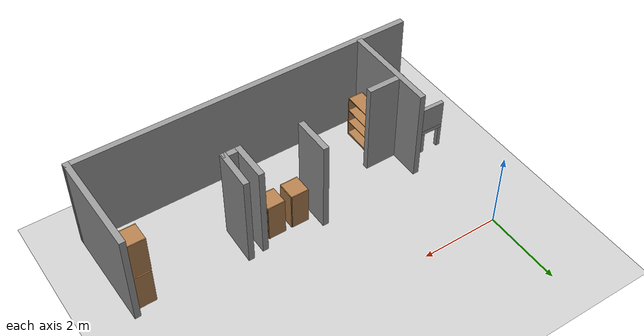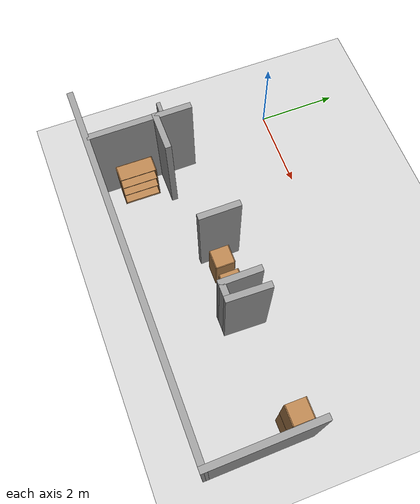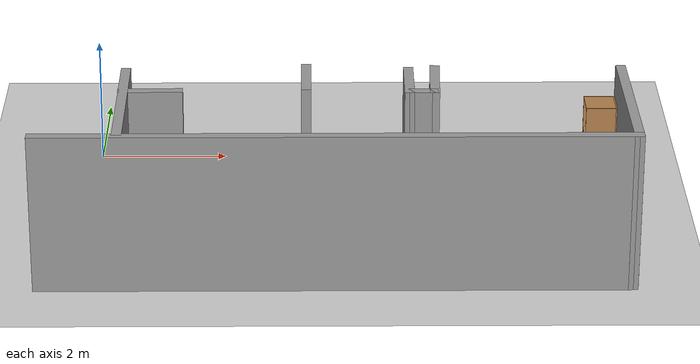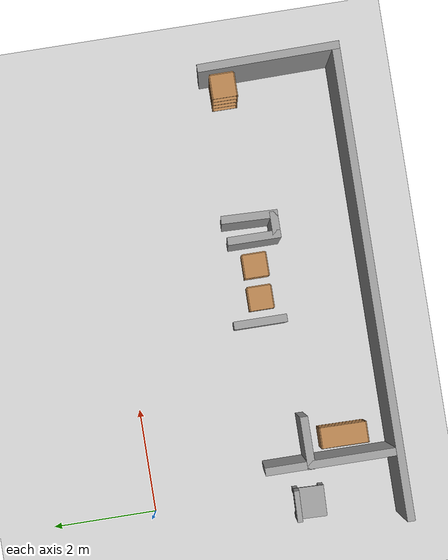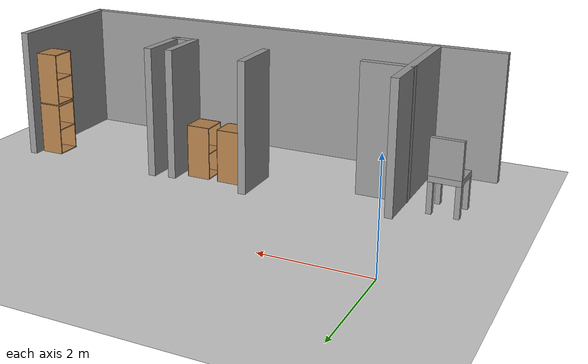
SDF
<sdf version="1.7">
 <world name="default">
  <model name="ground_plane">
   <static>1</static>
   <link name="link">
    <collision name="collision">
     <geometry><plane><normal>0 0 1</normal><size>100 100</size></plane></geometry>
     <surface>
      <contact><collide_bitmask>65535</collide_bitmask></contact>
      <friction><ode><mu>100</mu><mu2>50</mu2></ode></friction>
     </surface>
    </collision>
    <visual name="visual">
     <cast_shadows>0</cast_shadows>
     <geometry><plane><normal>0 0 1</normal><size>100 100</size></plane></geometry>
     <material>
      <script><uri>file://media/materials/scripts/gazebo.material</uri><name>Gazebo/Grey</name></script>
     </material>
    </visual>
   </link>
  </model>
  <model name="bookshelf_0_clone">
   <static>1</static>
   <link name="link">
    <inertial><mass>1</mass></inertial>
    <collision name="back">
     <pose>0 0.005 0.6 0 -0 0</pose>
     <geometry><box><size>0.9 0.01 1.2</size></box></geometry>
    </collision>
    <visual name="visual1">
     <pose>0 0.005 0.6 0 -0 0</pose>
     <geometry><box><size>0.9 0.01 1.2</size></box></geometry>
     <material>
      <script><uri>file://media/materials/scripts/gazebo.material</uri><name>Gazebo/Wood</name></script>
     </material>
    </visual>
    <collision name="left_side">
     <pose>0.45 -0.195 0.6 0 -0 0</pose>
     <geometry><box><size>0.02 0.4 1.2</size></box></geometry>
    </collision>
    <visual name="visual2">
     <pose>0.45 -0.195 0.6 0 -0 0</pose>
     <geometry><box><size>0.02 0.4 1.2</size></box></geometry>
     <material>
      <script><uri>file://media/materials/scripts/gazebo.material</uri><name>Gazebo/Wood</name></script>
     </material>
    </visual>
    <collision name="right_side">
     <pose>-0.45 -0.195 0.6 0 -0 0</pose>
     <geometry><box><size>0.02 0.4 1.2</size></box></geometry>
    </collision>
    <visual name="visual3">
     <pose>-0.45 -0.195 0.6 0 -0 0</pose>
     <geometry><box><size>0.02 0.4 1.2</size></box></geometry>
     <material>
      <script><uri>file://media/materials/scripts/gazebo.material</uri><name>Gazebo/Wood</name></script>
     </material>
    </visual>
    <collision name="bottom">
     <pose>0 -0.195 0.03 0 -0 0</pose>
     <geometry><box><size>0.88 0.4 0.06</size></box></geometry>
    </collision>
    <visual name="visual4">
     <pose>0 -0.195 0.03 0 -0 0</pose>
     <geometry><box><size>0.88 0.4 0.06</size></box></geometry>
     <material>
      <script><uri>file://media/materials/scripts/gazebo.material</uri><name>Gazebo/Wood</name></script>
     </material>
    </visual>
    <collision name="top">
     <pose>0 -0.195 1.19 0 -0 0</pose>
     <geometry><box><size>0.88 0.4 0.02</size></box></geometry>
    </collision>
    <visual name="visual5">
     <pose>0 -0.195 1.19 0 -0 0</pose>
     <geometry><box><size>0.88 0.4 0.02</size></box></geometry>
     <material>
      <script><uri>file://media/materials/scripts/gazebo.material</uri><name>Gazebo/Wood</name></script>
     </material>
    </visual>
    <collision name="low_shelf">
     <pose>0 -0.195 0.43 0 -0 0</pose>
     <geometry><box><size>0.88 0.4 0.02</size></box></geometry>
    </collision>
    <visual name="visual6">
     <pose>0 -0.195 0.43 0 -0 0</pose>
     <geometry><box><size>0.88 0.4 0.02</size></box></geometry>
     <material>
      <script><uri>file://media/materials/scripts/gazebo.material</uri><name>Gazebo/Wood</name></script>
     </material>
    </visual>
    <collision name="high_shelf">
     <pose>0 -0.195 0.8 0 -0 0</pose>
     <geometry><box><size>0.88 0.4 0.02</size></box></geometry>
    </collision>
    <visual name="visual7">
     <pose>0 -0.195 0.8 0 -0 0</pose>
     <geometry><box><size>0.88 0.4 0.02</size></box></geometry>
     <material>
      <script><uri>file://media/materials/scripts/gazebo.material</uri><name>Gazebo/Wood</name></script>
     </material>
    </visual>
   </link>
   <pose>0.760692 -3.82832 0 0 -0 1.55988</pose>
  </model>
  <model name="demo_clean">
   <link name="Wall_15">
    <pose>8.16988 -3.47452 0 0 0 -1.55787</pose>
    <visual name="Wall_15_Visual">
     <pose>0 0 1.25 0 -0 0</pose>
     <geometry><box><size>2.6816 0.15 2.5</size></box></geometry>
     <material>
      <script><uri>file://media/materials/scripts/gazebo.material</uri><name>Gazebo/Grey</name></script>
      <ambient>1 1 1 1</ambient>
      <shader type="pixel"/>
     </material>
     <meta><layer>0</layer></meta>
    </visual>
    <collision name="Wall_15_Collision">
     <pose>0 0 1.25 0 -0 0</pose>
     <geometry><box><size>2.6816 0.15 2.5</size></box></geometry>
     <surface>
      <friction>
       <ode><mu>1</mu><mu2>1</mu2><fdir1>0 0 0</fdir1><slip1>0</slip1><slip2>0</slip2></ode>
       <torsional>
        <coefficient>1</coefficient>
        <patch_radius>0</patch_radius>
        <surface_radius>0</surface_radius>
        <use_patch_radius>1</use_patch_radius>
        <ode><slip>0</slip></ode>
       </torsional>
      </friction>
      <bounce><restitution_coefficient>0</restitution_coefficient><threshold>1e+06</threshold></bounce>
      <contact>
       <collide_without_contact>0</collide_without_contact>
       <collide_without_contact_bitmask>1</collide_without_contact_bitmask>
       <collide_bitmask>1</collide_bitmask>
       <ode>
        <soft_cfm>0</soft_cfm>
        <soft_erp>0.2</soft_erp>
        <kp>1e+13</kp>
        <kd>1</kd>
        <max_vel>0.01</max_vel>
        <min_depth>0</min_depth>
       </ode>
       <bullet>
        <split_impulse>1</split_impulse>
        <split_impulse_penetration_threshold>-0.01</split_impulse_penetration_threshold>
        <soft_cfm>0</soft_cfm>
        <soft_erp>0.2</soft_erp>
        <kp>1e+13</kp>
        <kd>1</kd>
       </bullet>
      </contact>
     </surface>
    </collision>
   </link>
   <link name="Wall_16">
    <pose>3.76125 -4.74021 0 0 -0 3.14159</pose>
    <visual name="Wall_16_Visual">
     <pose>0 0 1.25 0 -0 0</pose>
     <geometry><box><size>9 0.15 2.5</size></box></geometry>
     <material>
      <script><uri>file://media/materials/scripts/gazebo.material</uri><name>Gazebo/Grey</name></script>
      <ambient>1 1 1 1</ambient>
      <shader type="pixel"/>
     </material>
     <meta><layer>0</layer></meta>
    </visual>
    <collision name="Wall_16_Collision">
     <pose>0 0 1.25 0 -0 0</pose>
     <geometry><box><size>9 0.15 2.5</size></box></geometry>
     <surface>
      <friction>
       <ode><mu>1</mu><mu2>1</mu2><fdir1>0 0 0</fdir1><slip1>0</slip1><slip2>0</slip2></ode>
       <torsional>
        <coefficient>1</coefficient>
        <patch_radius>0</patch_radius>
        <surface_radius>0</surface_radius>
        <use_patch_radius>1</use_patch_radius>
        <ode><slip>0</slip></ode>
       </torsional>
      </friction>
      <bounce><restitution_coefficient>0</restitution_coefficient><threshold>1e+06</threshold></bounce>
      <contact>
       <collide_without_contact>0</collide_without_contact>
       <collide_without_contact_bitmask>1</collide_without_contact_bitmask>
       <collide_bitmask>1</collide_bitmask>
       <ode>
        <soft_cfm>0</soft_cfm>
        <soft_erp>0.2</soft_erp>
        <kp>1e+13</kp>
        <kd>1</kd>
        <max_vel>0.01</max_vel>
        <min_depth>0</min_depth>
       </ode>
       <bullet>
        <split_impulse>1</split_impulse>
        <split_impulse_penetration_threshold>-0.01</split_impulse_penetration_threshold>
        <soft_cfm>0</soft_cfm>
        <soft_erp>0.2</soft_erp>
        <kp>1e+13</kp>
        <kd>1</kd>
       </bullet>
      </contact>
     </surface>
    </collision>
   </link>
   <link name="Wall_21">
    <pose>0.573753 -3.46553 0 0 0 -1.5708</pose>
    <visual name="Wall_21_Visual">
     <pose>0 0 1.25 0 -0 0</pose>
     <geometry><box><size>2.5 0.15 2.5</size></box></geometry>
     <material>
      <script><uri>file://media/materials/scripts/gazebo.material</uri><name>Gazebo/Grey</name></script>
      <ambient>1 1 1 1</ambient>
      <shader type="pixel"/>
     </material>
     <meta><layer>0</layer></meta>
    </visual>
    <collision name="Wall_21_Collision">
     <pose>0 0 1.25 0 -0 0</pose>
     <geometry><box><size>2.5 0.15 2.5</size></box></geometry>
     <surface>
      <friction>
       <ode><mu>1</mu><mu2>1</mu2><fdir1>0 0 0</fdir1><slip1>0</slip1><slip2>0</slip2></ode>
       <torsional>
        <coefficient>1</coefficient>
        <patch_radius>0</patch_radius>
        <surface_radius>0</surface_radius>
        <use_patch_radius>1</use_patch_radius>
        <ode><slip>0</slip></ode>
       </torsional>
      </friction>
      <bounce><restitution_coefficient>0</restitution_coefficient><threshold>1e+06</threshold></bounce>
      <contact>
       <collide_without_contact>0</collide_without_contact>
       <collide_without_contact_bitmask>1</collide_without_contact_bitmask>
       <collide_bitmask>1</collide_bitmask>
       <ode>
        <soft_cfm>0</soft_cfm>
        <soft_erp>0.2</soft_erp>
        <kp>1e+13</kp>
        <kd>1</kd>
        <max_vel>0.01</max_vel>
        <min_depth>0</min_depth>
       </ode>
       <bullet>
        <split_impulse>1</split_impulse>
        <split_impulse_penetration_threshold>-0.01</split_impulse_penetration_threshold>
        <soft_cfm>0</soft_cfm>
        <soft_erp>0.2</soft_erp>
        <kp>1e+13</kp>
        <kd>1</kd>
       </bullet>
      </contact>
     </surface>
    </collision>
   </link>
   <link name="Wall_23">
    <pose>0.983425 -3.07697 0 0 -0 0</pose>
    <inertial>
     <inertia><ixx>0</ixx><ixy>0</ixy><ixz>0</ixz><iyy>0</iyy><iyz>0</iyz><izz>0</izz></inertia>
     <mass>0</mass>
    </inertial>
    <visual name="Wall_23_Visual">
     <pose>0 0 1.25 0 -0 0</pose>
     <geometry><box><size>0.981708 0.15 2.5</size></box></geometry>
     <material>
      <script><uri>file://media/materials/scripts/gazebo.material</uri><name>Gazebo/Grey</name></script>
      <ambient>1 1 1 1</ambient>
      <shader type="pixel"/>
     </material>
     <meta><layer>0</layer></meta>
    </visual>
    <collision name="Wall_23_Collision">
     <pose>0 0 1.25 0 -0 0</pose>
     <geometry><box><size>0.981708 0.15 2.5</size></box></geometry>
     <surface>
      <friction>
       <ode><mu>1</mu><mu2>1</mu2><fdir1>0 0 0</fdir1><slip1>0</slip1><slip2>0</slip2></ode>
       <torsional>
        <coefficient>1</coefficient>
        <patch_radius>0</patch_radius>
        <surface_radius>0</surface_radius>
        <use_patch_radius>1</use_patch_radius>
        <ode><slip>0</slip></ode>
       </torsional>
      </friction>
      <bounce><restitution_coefficient>0</restitution_coefficient><threshold>1e+06</threshold></bounce>
      <contact>
       <collide_without_contact>0</collide_without_contact>
       <collide_without_contact_bitmask>1</collide_without_contact_bitmask>
       <collide_bitmask>1</collide_bitmask>
       <ode>
        <soft_cfm>0</soft_cfm>
        <soft_erp>0.2</soft_erp>
        <kp>1e+13</kp>
        <kd>1</kd>
        <max_vel>0.01</max_vel>
        <min_depth>0</min_depth>
       </ode>
       <bullet>
        <split_impulse>1</split_impulse>
        <split_impulse_penetration_threshold>-0.01</split_impulse_penetration_threshold>
        <soft_cfm>0</soft_cfm>
        <soft_erp>0.2</soft_erp>
        <kp>1e+13</kp>
        <kd>1</kd>
       </bullet>
      </contact>
     </surface>
    </collision>
   </link>
   <link name="Wall_40">
    <pose>4.89119 -2.69073 0 0 0 -1.57324</pose>
    <visual name="Wall_40_Visual">
     <pose>0 0 1.25 0 -0 0</pose>
     <geometry><box><size>1 0.15 2.5</size></box></geometry>
     <material>
      <script><uri>file://media/materials/scripts/gazebo.material</uri><name>Gazebo/Grey</name></script>
      <ambient>1 1 1 1</ambient>
      <shader type="pixel"/>
     </material>
     <meta><layer>0</layer></meta>
    </visual>
    <collision name="Wall_40_Collision">
     <pose>0 0 1.25 0 -0 0</pose>
     <geometry><box><size>1 0.15 2.5</size></box></geometry>
     <surface>
      <friction>
       <ode><mu>1</mu><mu2>1</mu2><fdir1>0 0 0</fdir1><slip1>0</slip1><slip2>0</slip2></ode>
       <torsional>
        <coefficient>1</coefficient>
        <patch_radius>0</patch_radius>
        <surface_radius>0</surface_radius>
        <use_patch_radius>1</use_patch_radius>
        <ode><slip>0</slip></ode>
       </torsional>
      </friction>
      <bounce><restitution_coefficient>0</restitution_coefficient><threshold>1e+06</threshold></bounce>
      <contact>
       <collide_without_contact>0</collide_without_contact>
       <collide_without_contact_bitmask>1</collide_without_contact_bitmask>
       <collide_bitmask>1</collide_bitmask>
       <ode>
        <soft_cfm>0</soft_cfm>
        <soft_erp>0.2</soft_erp>
        <kp>1e+13</kp>
        <kd>1</kd>
        <max_vel>0.01</max_vel>
        <min_depth>0</min_depth>
       </ode>
       <bullet>
        <split_impulse>1</split_impulse>
        <split_impulse_penetration_threshold>-0.01</split_impulse_penetration_threshold>
        <soft_cfm>0</soft_cfm>
        <soft_erp>0.2</soft_erp>
        <kp>1e+13</kp>
        <kd>1</kd>
       </bullet>
      </contact>
     </surface>
    </collision>
   </link>
   <link name="Wall_41">
    <pose>5.06619 -3.11573 0 0 -0 0</pose>
    <visual name="Wall_41_Visual">
     <pose>0 0 1.25 0 -0 0</pose>
     <geometry><box><size>0.5 0.15 2.5</size></box></geometry>
     <material>
      <script><uri>file://media/materials/scripts/gazebo.material</uri><name>Gazebo/Grey</name></script>
      <ambient>1 1 1 1</ambient>
      <shader type="pixel"/>
     </material>
     <meta><layer>0</layer></meta>
    </visual>
    <collision name="Wall_41_Collision">
     <pose>0 0 1.25 0 -0 0</pose>
     <geometry><box><size>0.5 0.15 2.5</size></box></geometry>
     <surface>
      <friction>
       <ode><mu>1</mu><mu2>1</mu2><fdir1>0 0 0</fdir1><slip1>0</slip1><slip2>0</slip2></ode>
       <torsional>
        <coefficient>1</coefficient>
        <patch_radius>0</patch_radius>
        <surface_radius>0</surface_radius>
        <use_patch_radius>1</use_patch_radius>
        <ode><slip>0</slip></ode>
       </torsional>
      </friction>
      <bounce><restitution_coefficient>0</restitution_coefficient><threshold>1e+06</threshold></bounce>
      <contact>
       <collide_without_contact>0</collide_without_contact>
       <collide_without_contact_bitmask>1</collide_without_contact_bitmask>
       <collide_bitmask>1</collide_bitmask>
       <ode>
        <soft_cfm>0</soft_cfm>
        <soft_erp>0.2</soft_erp>
        <kp>1e+13</kp>
        <kd>1</kd>
        <max_vel>0.01</max_vel>
        <min_depth>0</min_depth>
       </ode>
       <bullet>
        <split_impulse>1</split_impulse>
        <split_impulse_penetration_threshold>-0.01</split_impulse_penetration_threshold>
        <soft_cfm>0</soft_cfm>
        <soft_erp>0.2</soft_erp>
        <kp>1e+13</kp>
        <kd>1</kd>
       </bullet>
      </contact>
     </surface>
    </collision>
   </link>
   <link name="Wall_42">
    <pose>5.28364 -2.66264 0 0 -0 1.53905</pose>
    <visual name="Wall_42_Visual">
     <pose>0 0 1.25 0 -0 0</pose>
     <geometry><box><size>1.05905 0.15 2.5</size></box></geometry>
     <material>
      <script><uri>file://media/materials/scripts/gazebo.material</uri><name>Gazebo/Grey</name></script>
      <ambient>1 1 1 1</ambient>
      <shader type="pixel"/>
     </material>
     <meta><layer>0</layer></meta>
    </visual>
    <collision name="Wall_42_Collision">
     <pose>0 0 1.25 0 -0 0</pose>
     <geometry><box><size>1.05905 0.15 2.5</size></box></geometry>
     <surface>
      <friction>
       <ode><mu>1</mu><mu2>1</mu2><fdir1>0 0 0</fdir1><slip1>0</slip1><slip2>0</slip2></ode>
       <torsional>
        <coefficient>1</coefficient>
        <patch_radius>0</patch_radius>
        <surface_radius>0</surface_radius>
        <use_patch_radius>1</use_patch_radius>
        <ode><slip>0</slip></ode>
       </torsional>
      </friction>
      <bounce><restitution_coefficient>0</restitution_coefficient><threshold>1e+06</threshold></bounce>
      <contact>
       <collide_without_contact>0</collide_without_contact>
       <collide_without_contact_bitmask>1</collide_without_contact_bitmask>
       <collide_bitmask>1</collide_bitmask>
       <ode>
        <soft_cfm>0</soft_cfm>
        <soft_erp>0.2</soft_erp>
        <kp>1e+13</kp>
        <kd>1</kd>
        <max_vel>0.01</max_vel>
        <min_depth>0</min_depth>
       </ode>
       <bullet>
        <split_impulse>1</split_impulse>
        <split_impulse_penetration_threshold>-0.01</split_impulse_penetration_threshold>
        <soft_cfm>0</soft_cfm>
        <soft_erp>0.2</soft_erp>
        <kp>1e+13</kp>
        <kd>1</kd>
       </bullet>
      </contact>
     </surface>
    </collision>
   </link>
   <link name="Wall_49">
    <pose>3.33073 -2.56443 0 0 0 -1.5708</pose>
    <visual name="Wall_49_Visual">
     <pose>0 0 1.25 0 -0 0</pose>
     <geometry><box><size>1 0.15 2.5</size></box></geometry>
     <material>
      <script><uri>file://media/materials/scripts/gazebo.material</uri><name>Gazebo/Grey</name></script>
      <ambient>1 1 1 1</ambient>
      <shader type="pixel"/>
     </material>
     <meta><layer>0</layer></meta>
    </visual>
    <collision name="Wall_49_Collision">
     <pose>0 0 1.25 0 -0 0</pose>
     <geometry><box><size>1 0.15 2.5</size></box></geometry>
     <surface>
      <friction>
       <ode><mu>1</mu><mu2>1</mu2><fdir1>0 0 0</fdir1><slip1>0</slip1><slip2>0</slip2></ode>
       <torsional>
        <coefficient>1</coefficient>
        <patch_radius>0</patch_radius>
        <surface_radius>0</surface_radius>
        <use_patch_radius>1</use_patch_radius>
        <ode><slip>0</slip></ode>
       </torsional>
      </friction>
      <bounce><restitution_coefficient>0</restitution_coefficient><threshold>1e+06</threshold></bounce>
      <contact>
       <collide_without_contact>0</collide_without_contact>
       <collide_without_contact_bitmask>1</collide_without_contact_bitmask>
       <collide_bitmask>1</collide_bitmask>
       <ode>
        <soft_cfm>0</soft_cfm>
        <soft_erp>0.2</soft_erp>
        <kp>1e+13</kp>
        <kd>1</kd>
        <max_vel>0.01</max_vel>
        <min_depth>0</min_depth>
       </ode>
       <bullet>
        <split_impulse>1</split_impulse>
        <split_impulse_penetration_threshold>-0.01</split_impulse_penetration_threshold>
        <soft_cfm>0</soft_cfm>
        <soft_erp>0.2</soft_erp>
        <kp>1e+13</kp>
        <kd>1</kd>
       </bullet>
      </contact>
     </surface>
    </collision>
   </link>
   <static>1</static>
  </model>
  <model name="cabinet_clone">
   <static>1</static>
   <link name="cabinet_bottom_plate">
    <inertial>
     <pose>0 0 -1 0 -0 0</pose>
     <inertia><ixx>2.05</ixx><ixy>0</ixy><ixz>0</ixz><iyy>2.05</iyy><iyz>0</iyz><izz>2.05</izz></inertia>
     <mass>25</mass>
    </inertial>
    <collision name="cabinet_bottom_plate_geom">
     <pose>0 0 0.01 0 -0 0</pose>
     <geometry><box><size>0.45 0.45 0.02</size></box></geometry>
    </collision>
    <visual name="cabinet_bottom_plate_geom_visual">
     <pose>0 0 0.01 0 -0 0</pose>
     <geometry><box><size>0.45 0.45 0.02</size></box></geometry>
     <material>
      <script><uri>file://media/materials/scripts/gazebo.material</uri><name>Gazebo/Wood</name></script>
     </material>
    </visual>
    <collision name="cabinet_bottom_plate_geom_cabinet_back_plate">
     <pose>0.235 0 0.51 0 -0 0</pose>
     <geometry><box><size>0.02 0.45 1.02</size></box></geometry>
    </collision>
    <visual name="cabinet_bottom_plate_geom_cabinet_back_plate_visual">
     <pose>0.235 0 0.51 0 -0 0</pose>
     <geometry><box><size>0.02 0.45 1.02</size></box></geometry>
     <material>
      <script><uri>file://media/materials/scripts/gazebo.material</uri><name>Gazebo/Wood</name></script>
     </material>
    </visual>
    <collision name="cabinet_bottom_plate_geom_cabinet_left_plate">
     <pose>0 0.235 0.51 0 -0 0</pose>
     <geometry><box><size>0.45 0.02 1.02</size></box></geometry>
    </collision>
    <visual name="cabinet_bottom_plate_geom_cabinet_left_plate_visual">
     <pose>0 0.235 0.51 0 -0 0</pose>
     <geometry><box><size>0.45 0.02 1.02</size></box></geometry>
     <material>
      <script><uri>file://media/materials/scripts/gazebo.material</uri><name>Gazebo/Wood</name></script>
     </material>
    </visual>
    <collision name="cabinet_bottom_plate_geom_cabinet_middle_plate">
     <pose>0 0 0.51 0 -0 0</pose>
     <geometry><box><size>0.45 0.45 0.02</size></box></geometry>
    </collision>
    <visual name="cabinet_bottom_plate_geom_cabinet_middle_plate_visual">
     <pose>0 0 0.51 0 -0 0</pose>
     <geometry><box><size>0.45 0.45 0.02</size></box></geometry>
     <material>
      <script><uri>file://media/materials/scripts/gazebo.material</uri><name>Gazebo/Wood</name></script>
     </material>
    </visual>
    <collision name="cabinet_bottom_plate_geom_cabinet_right_plate">
     <pose>0 -0.235 0.51 0 -0 0</pose>
     <geometry><box><size>0.45 0.02 1.02</size></box></geometry>
    </collision>
    <visual name="cabinet_bottom_plate_geom_cabinet_right_plate_visual">
     <pose>0 -0.235 0.51 0 -0 0</pose>
     <geometry><box><size>0.45 0.02 1.02</size></box></geometry>
     <material>
      <script><uri>file://media/materials/scripts/gazebo.material</uri><name>Gazebo/Wood</name></script>
     </material>
    </visual>
    <collision name="cabinet_bottom_plate_geom_cabinet_top_plate">
     <pose>0 0 1.01 0 -0 0</pose>
     <geometry><box><size>0.45 0.45 0.02</size></box></geometry>
    </collision>
    <visual name="cabinet_bottom_plate_geom_cabinet_top_plate_visual">
     <pose>0 0 1.01 0 -0 0</pose>
     <geometry><box><size>0.45 0.45 0.02</size></box></geometry>
     <material>
      <script><uri>file://media/materials/scripts/gazebo.material</uri><name>Gazebo/Wood</name></script>
     </material>
    </visual>
   </link>
   <pose>3.79546 -2.66542 0 0 -0 0</pose>
  </model>
  <model name="cabinet_clone_0">
   <static>1</static>
   <link name="cabinet_bottom_plate">
    <inertial>
     <pose>0 0 -1 0 -0 0</pose>
     <inertia><ixx>2.05</ixx><ixy>0</ixy><ixz>0</ixz><iyy>2.05</iyy><iyz>0</iyz><izz>2.05</izz></inertia>
     <mass>25</mass>
    </inertial>
    <collision name="cabinet_bottom_plate_geom">
     <pose>0 0 0.01 0 -0 0</pose>
     <geometry><box><size>0.45 0.45 0.02</size></box></geometry>
    </collision>
    <visual name="cabinet_bottom_plate_geom_visual">
     <pose>0 0 0.01 0 -0 0</pose>
     <geometry><box><size>0.45 0.45 0.02</size></box></geometry>
     <material>
      <script><uri>file://media/materials/scripts/gazebo.material</uri><name>Gazebo/Wood</name></script>
     </material>
    </visual>
    <collision name="cabinet_bottom_plate_geom_cabinet_back_plate">
     <pose>0.235 0 0.51 0 -0 0</pose>
     <geometry><box><size>0.02 0.45 1.02</size></box></geometry>
    </collision>
    <visual name="cabinet_bottom_plate_geom_cabinet_back_plate_visual">
     <pose>0.235 0 0.51 0 -0 0</pose>
     <geometry><box><size>0.02 0.45 1.02</size></box></geometry>
     <material>
      <script><uri>file://media/materials/scripts/gazebo.material</uri><name>Gazebo/Wood</name></script>
     </material>
    </visual>
    <collision name="cabinet_bottom_plate_geom_cabinet_left_plate">
     <pose>0 0.235 0.51 0 -0 0</pose>
     <geometry><box><size>0.45 0.02 1.02</size></box></geometry>
    </collision>
    <visual name="cabinet_bottom_plate_geom_cabinet_left_plate_visual">
     <pose>0 0.235 0.51 0 -0 0</pose>
     <geometry><box><size>0.45 0.02 1.02</size></box></geometry>
     <material>
      <script><uri>file://media/materials/scripts/gazebo.material</uri><name>Gazebo/Wood</name></script>
     </material>
    </visual>
    <collision name="cabinet_bottom_plate_geom_cabinet_middle_plate">
     <pose>0 0 0.51 0 -0 0</pose>
     <geometry><box><size>0.45 0.45 0.02</size></box></geometry>
    </collision>
    <visual name="cabinet_bottom_plate_geom_cabinet_middle_plate_visual">
     <pose>0 0 0.51 0 -0 0</pose>
     <geometry><box><size>0.45 0.45 0.02</size></box></geometry>
     <material>
      <script><uri>file://media/materials/scripts/gazebo.material</uri><name>Gazebo/Wood</name></script>
     </material>
    </visual>
    <collision name="cabinet_bottom_plate_geom_cabinet_right_plate">
     <pose>0 -0.235 0.51 0 -0 0</pose>
     <geometry><box><size>0.45 0.02 1.02</size></box></geometry>
    </collision>
    <visual name="cabinet_bottom_plate_geom_cabinet_right_plate_visual">
     <pose>0 -0.235 0.51 0 -0 0</pose>
     <geometry><box><size>0.45 0.02 1.02</size></box></geometry>
     <material>
      <script><uri>file://media/materials/scripts/gazebo.material</uri><name>Gazebo/Wood</name></script>
     </material>
    </visual>
    <collision name="cabinet_bottom_plate_geom_cabinet_top_plate">
     <pose>0 0 1.01 0 -0 0</pose>
     <geometry><box><size>0.45 0.45 0.02</size></box></geometry>
    </collision>
    <visual name="cabinet_bottom_plate_geom_cabinet_top_plate_visual">
     <pose>0 0 1.01 0 -0 0</pose>
     <geometry><box><size>0.45 0.45 0.02</size></box></geometry>
     <material>
      <script><uri>file://media/materials/scripts/gazebo.material</uri><name>Gazebo/Wood</name></script>
     </material>
    </visual>
   </link>
   <pose>4.4286 -2.66549 0 0 -0 0</pose>
  </model>
  <model name="cabinet_clone_2">
   <static>1</static>
   <link name="cabinet_bottom_plate">
    <inertial>
     <pose>0 0 -1 0 -0 0</pose>
     <inertia><ixx>2.05</ixx><ixy>0</ixy><ixz>0</ixz><iyy>2.05</iyy><iyz>0</iyz><izz>2.05</izz></inertia>
     <mass>25</mass>
    </inertial>
    <collision name="cabinet_bottom_plate_geom">
     <pose>0 0 0.01 0 -0 0</pose>
     <geometry><box><size>0.45 0.45 0.02</size></box></geometry>
    </collision>
    <visual name="cabinet_bottom_plate_geom_visual">
     <pose>0 0 0.01 0 -0 0</pose>
     <geometry><box><size>0.45 0.45 0.02</size></box></geometry>
     <material>
      <script><uri>file://media/materials/scripts/gazebo.material</uri><name>Gazebo/Wood</name></script>
     </material>
    </visual>
    <collision name="cabinet_bottom_plate_geom_cabinet_back_plate">
     <pose>0.235 0 0.51 0 -0 0</pose>
     <geometry><box><size>0.02 0.45 1.02</size></box></geometry>
    </collision>
    <visual name="cabinet_bottom_plate_geom_cabinet_back_plate_visual">
     <pose>0.235 0 0.51 0 -0 0</pose>
     <geometry><box><size>0.02 0.45 1.02</size></box></geometry>
     <material>
      <script><uri>file://media/materials/scripts/gazebo.material</uri><name>Gazebo/Wood</name></script>
     </material>
    </visual>
    <collision name="cabinet_bottom_plate_geom_cabinet_left_plate">
     <pose>0 0.235 0.51 0 -0 0</pose>
     <geometry><box><size>0.45 0.02 1.02</size></box></geometry>
    </collision>
    <visual name="cabinet_bottom_plate_geom_cabinet_left_plate_visual">
     <pose>0 0.235 0.51 0 -0 0</pose>
     <geometry><box><size>0.45 0.02 1.02</size></box></geometry>
     <material>
      <script><uri>file://media/materials/scripts/gazebo.material</uri><name>Gazebo/Wood</name></script>
     </material>
    </visual>
    <collision name="cabinet_bottom_plate_geom_cabinet_middle_plate">
     <pose>0 0 0.51 0 -0 0</pose>
     <geometry><box><size>0.45 0.45 0.02</size></box></geometry>
    </collision>
    <visual name="cabinet_bottom_plate_geom_cabinet_middle_plate_visual">
     <pose>0 0 0.51 0 -0 0</pose>
     <geometry><box><size>0.45 0.45 0.02</size></box></geometry>
     <material>
      <script><uri>file://media/materials/scripts/gazebo.material</uri><name>Gazebo/Wood</name></script>
     </material>
    </visual>
    <collision name="cabinet_bottom_plate_geom_cabinet_right_plate">
     <pose>0 -0.235 0.51 0 -0 0</pose>
     <geometry><box><size>0.45 0.02 1.02</size></box></geometry>
    </collision>
    <visual name="cabinet_bottom_plate_geom_cabinet_right_plate_visual">
     <pose>0 -0.235 0.51 0 -0 0</pose>
     <geometry><box><size>0.45 0.02 1.02</size></box></geometry>
     <material>
      <script><uri>file://media/materials/scripts/gazebo.material</uri><name>Gazebo/Wood</name></script>
     </material>
    </visual>
    <collision name="cabinet_bottom_plate_geom_cabinet_top_plate">
     <pose>0 0 1.01 0 -0 0</pose>
     <geometry><box><size>0.45 0.45 0.02</size></box></geometry>
    </collision>
    <visual name="cabinet_bottom_plate_geom_cabinet_top_plate_visual">
     <pose>0 0 1.01 0 -0 0</pose>
     <geometry><box><size>0.45 0.45 0.02</size></box></geometry>
     <material>
      <script><uri>file://media/materials/scripts/gazebo.material</uri><name>Gazebo/Wood</name></script>
     </material>
    </visual>
   </link>
   <pose>7.81869 -2.57284 0 0 -0 0</pose>
  </model>
  <model name="cabinet_clone_2_clone">
   <static>1</static>
   <link name="cabinet_bottom_plate">
    <inertial>
     <pose>0 0 -1 0 -0 0</pose>
     <inertia><ixx>2.05</ixx><ixy>0</ixy><ixz>0</ixz><iyy>2.05</iyy><iyz>0</iyz><izz>2.05</izz></inertia>
     <mass>25</mass>
    </inertial>
    <collision name="cabinet_bottom_plate_geom">
     <pose>0 0 0.01 0 -0 0</pose>
     <geometry><box><size>0.45 0.45 0.02</size></box></geometry>
    </collision>
    <visual name="cabinet_bottom_plate_geom_visual">
     <pose>0 0 0.01 0 -0 0</pose>
     <geometry><box><size>0.45 0.45 0.02</size></box></geometry>
     <material>
      <script><uri>file://media/materials/scripts/gazebo.material</uri><name>Gazebo/Wood</name></script>
     </material>
    </visual>
    <collision name="cabinet_bottom_plate_geom_cabinet_back_plate">
     <pose>0.235 0 0.51 0 -0 0</pose>
     <geometry><box><size>0.02 0.45 1.02</size></box></geometry>
    </collision>
    <visual name="cabinet_bottom_plate_geom_cabinet_back_plate_visual">
     <pose>0.235 0 0.51 0 -0 0</pose>
     <geometry><box><size>0.02 0.45 1.02</size></box></geometry>
     <material>
      <script><uri>file://media/materials/scripts/gazebo.material</uri><name>Gazebo/Wood</name></script>
     </material>
    </visual>
    <collision name="cabinet_bottom_plate_geom_cabinet_left_plate">
     <pose>0 0.235 0.51 0 -0 0</pose>
     <geometry><box><size>0.45 0.02 1.02</size></box></geometry>
    </collision>
    <visual name="cabinet_bottom_plate_geom_cabinet_left_plate_visual">
     <pose>0 0.235 0.51 0 -0 0</pose>
     <geometry><box><size>0.45 0.02 1.02</size></box></geometry>
     <material>
      <script><uri>file://media/materials/scripts/gazebo.material</uri><name>Gazebo/Wood</name></script>
     </material>
    </visual>
    <collision name="cabinet_bottom_plate_geom_cabinet_middle_plate">
     <pose>0 0 0.51 0 -0 0</pose>
     <geometry><box><size>0.45 0.45 0.02</size></box></geometry>
    </collision>
    <visual name="cabinet_bottom_plate_geom_cabinet_middle_plate_visual">
     <pose>0 0 0.51 0 -0 0</pose>
     <geometry><box><size>0.45 0.45 0.02</size></box></geometry>
     <material>
      <script><uri>file://media/materials/scripts/gazebo.material</uri><name>Gazebo/Wood</name></script>
     </material>
    </visual>
    <collision name="cabinet_bottom_plate_geom_cabinet_right_plate">
     <pose>0 -0.235 0.51 0 -0 0</pose>
     <geometry><box><size>0.45 0.02 1.02</size></box></geometry>
    </collision>
    <visual name="cabinet_bottom_plate_geom_cabinet_right_plate_visual">
     <pose>0 -0.235 0.51 0 -0 0</pose>
     <geometry><box><size>0.45 0.02 1.02</size></box></geometry>
     <material>
      <script><uri>file://media/materials/scripts/gazebo.material</uri><name>Gazebo/Wood</name></script>
     </material>
    </visual>
    <collision name="cabinet_bottom_plate_geom_cabinet_top_plate">
     <pose>0 0 1.01 0 -0 0</pose>
     <geometry><box><size>0.45 0.45 0.02</size></box></geometry>
    </collision>
    <visual name="cabinet_bottom_plate_geom_cabinet_top_plate_visual">
     <pose>0 0 1.01 0 -0 0</pose>
     <geometry><box><size>0.45 0.45 0.02</size></box></geometry>
     <material>
      <script><uri>file://media/materials/scripts/gazebo.material</uri><name>Gazebo/Wood</name></script>
     </material>
    </visual>
   </link>
   <pose>7.81489 -2.57467 1.04516 0 -0 0</pose>
  </model>
  <model name="simple_chair_clone">
   <link name="link_0_clone">
    <inertial>
     <mass>1</mass>
     <inertia>
      <ixx>0.166667</ixx>
      <ixy>0</ixy>
      <ixz>0</ixz>
      <iyy>0.166667</iyy>
      <iyz>0</iyz>
      <izz>0.166667</izz>
     </inertia>
    </inertial>
    <pose>-0.041667 -0 0.165833 0 -0 0</pose>
    <visual name="visual">
     <geometry><box><size>0.6 0.6 0.11</size></box></geometry>
     <material>
      <lighting>1</lighting>
      <script><uri>file://media/materials/scripts/gazebo.material</uri><name>Gazebo/Grey</name></script>
      <shader type="pixel"><normal_map>__default__</normal_map></shader>
      <ambient>0.3 0.3 0.3 1</ambient>
      <diffuse>0.7 0.7 0.7 1</diffuse>
      <specular>0.01 0.01 0.01 1</specular>
      <emissive>0 0 0 1</emissive>
     </material>
    </visual>
    <collision name="collision">
     <geometry><box><size>0.6 0.6 0.1</size></box></geometry>
     <surface>
      <friction>
       <ode><mu>1</mu><mu2>1</mu2><fdir1>0 0 0</fdir1><slip1>0</slip1><slip2>0</slip2></ode>
       <torsional>
        <coefficient>1</coefficient>
        <patch_radius>0</patch_radius>
        <surface_radius>0</surface_radius>
        <use_patch_radius>1</use_patch_radius>
        <ode><slip>0</slip></ode>
       </torsional>
      </friction>
      <bounce><restitution_coefficient>0</restitution_coefficient><threshold>1e+06</threshold></bounce>
      <contact>
       <collide_without_contact>0</collide_without_contact>
       <collide_without_contact_bitmask>1</collide_without_contact_bitmask>
       <collide_bitmask>1</collide_bitmask>
       <ode>
        <soft_cfm>0</soft_cfm>
        <soft_erp>0.2</soft_erp>
        <kp>1e+13</kp>
        <kd>1</kd>
        <max_vel>0.01</max_vel>
        <min_depth>0</min_depth>
       </ode>
       <bullet>
        <split_impulse>1</split_impulse>
        <split_impulse_penetration_threshold>-0.01</split_impulse_penetration_threshold>
        <soft_cfm>0</soft_cfm>
        <soft_erp>0.2</soft_erp>
        <kp>1e+13</kp>
        <kd>1</kd>
       </bullet>
      </contact>
     </surface>
    </collision>
   </link>
   <link name="link_1_clone">
    <inertial>
     <mass>1</mass>
     <inertia>
      <ixx>0.166667</ixx>
      <ixy>0</ixy>
      <ixz>0</ixz>
      <iyy>0.166667</iyy>
      <iyz>0</iyz>
      <izz>0.166667</izz>
     </inertia>
    </inertial>
    <pose>-0.291667 0.25 -0.184167 0 -0 0</pose>
    <visual name="visual">
     <geometry><box><size>0.1 0.1 0.6</size></box></geometry>
     <material>
      <lighting>1</lighting>
      <script><uri>file://media/materials/scripts/gazebo.material</uri><name>Gazebo/Grey</name></script>
      <shader type="pixel"><normal_map>__default__</normal_map></shader>
      <ambient>0.3 0.3 0.3 1</ambient>
      <diffuse>0.7 0.7 0.7 1</diffuse>
      <specular>0.01 0.01 0.01 1</specular>
      <emissive>0 0 0 1</emissive>
     </material>
    </visual>
    <collision name="collision">
     <geometry><box><size>0.1 0.1 0.6</size></box></geometry>
     <surface>
      <friction>
       <ode><mu>1</mu><mu2>1</mu2><fdir1>0 0 0</fdir1><slip1>0</slip1><slip2>0</slip2></ode>
       <torsional>
        <coefficient>1</coefficient>
        <patch_radius>0</patch_radius>
        <surface_radius>0</surface_radius>
        <use_patch_radius>1</use_patch_radius>
        <ode><slip>0</slip></ode>
       </torsional>
      </friction>
      <bounce><restitution_coefficient>0</restitution_coefficient><threshold>1e+06</threshold></bounce>
      <contact>
       <collide_without_contact>0</collide_without_contact>
       <collide_without_contact_bitmask>1</collide_without_contact_bitmask>
       <collide_bitmask>1</collide_bitmask>
       <ode>
        <soft_cfm>0</soft_cfm>
        <soft_erp>0.2</soft_erp>
        <kp>1e+13</kp>
        <kd>1</kd>
        <max_vel>0.01</max_vel>
        <min_depth>0</min_depth>
       </ode>
       <bullet>
        <split_impulse>1</split_impulse>
        <split_impulse_penetration_threshold>-0.01</split_impulse_penetration_threshold>
        <soft_cfm>0</soft_cfm>
        <soft_erp>0.2</soft_erp>
        <kp>1e+13</kp>
        <kd>1</kd>
       </bullet>
      </contact>
     </surface>
    </collision>
   </link>
   <link name="link_1_clone_0">
    <inertial>
     <mass>1</mass>
     <inertia>
      <ixx>0.166667</ixx>
      <ixy>0</ixy>
      <ixz>0</ixz>
      <iyy>0.166667</iyy>
      <iyz>0</iyz>
      <izz>0.166667</izz>
     </inertia>
    </inertial>
    <pose>0.208333 0.25 -0.184167 0 -0 0</pose>
    <visual name="visual">
     <geometry><box><size>0.1 0.1 0.6</size></box></geometry>
     <material>
      <lighting>1</lighting>
      <script><uri>file://media/materials/scripts/gazebo.material</uri><name>Gazebo/Grey</name></script>
      <shader type="pixel"><normal_map>__default__</normal_map></shader>
      <ambient>0.3 0.3 0.3 1</ambient>
      <diffuse>0.7 0.7 0.7 1</diffuse>
      <specular>0.01 0.01 0.01 1</specular>
      <emissive>0 0 0 1</emissive>
     </material>
    </visual>
    <collision name="collision">
     <geometry><box><size>0.1 0.1 0.6</size></box></geometry>
     <surface>
      <friction>
       <ode><mu>1</mu><mu2>1</mu2><fdir1>0 0 0</fdir1><slip1>0</slip1><slip2>0</slip2></ode>
       <torsional>
        <coefficient>1</coefficient>
        <patch_radius>0</patch_radius>
        <surface_radius>0</surface_radius>
        <use_patch_radius>1</use_patch_radius>
        <ode><slip>0</slip></ode>
       </torsional>
      </friction>
      <bounce><restitution_coefficient>0</restitution_coefficient><threshold>1e+06</threshold></bounce>
      <contact>
       <collide_without_contact>0</collide_without_contact>
       <collide_without_contact_bitmask>1</collide_without_contact_bitmask>
       <collide_bitmask>1</collide_bitmask>
       <ode>
        <soft_cfm>0</soft_cfm>
        <soft_erp>0.2</soft_erp>
        <kp>1e+13</kp>
        <kd>1</kd>
        <max_vel>0.01</max_vel>
        <min_depth>0</min_depth>
       </ode>
       <bullet>
        <split_impulse>1</split_impulse>
        <split_impulse_penetration_threshold>-0.01</split_impulse_penetration_threshold>
        <soft_cfm>0</soft_cfm>
        <soft_erp>0.2</soft_erp>
        <kp>1e+13</kp>
        <kd>1</kd>
       </bullet>
      </contact>
     </surface>
    </collision>
   </link>
   <link name="link_1_clone_1">
    <inertial>
     <mass>1</mass>
     <inertia>
      <ixx>0.166667</ixx>
      <ixy>0</ixy>
      <ixz>0</ixz>
      <iyy>0.166667</iyy>
      <iyz>0</iyz>
      <izz>0.166667</izz>
     </inertia>
    </inertial>
    <pose>0.208333 -0.25 -0.184167 0 -0 0</pose>
    <visual name="visual">
     <geometry><box><size>0.1 0.1 0.6</size></box></geometry>
     <material>
      <lighting>1</lighting>
      <script><uri>file://media/materials/scripts/gazebo.material</uri><name>Gazebo/Grey</name></script>
      <shader type="pixel"><normal_map>__default__</normal_map></shader>
      <ambient>0.3 0.3 0.3 1</ambient>
      <diffuse>0.7 0.7 0.7 1</diffuse>
      <specular>0.01 0.01 0.01 1</specular>
      <emissive>0 0 0 1</emissive>
     </material>
    </visual>
    <collision name="collision">
     <geometry><box><size>0.1 0.1 0.6</size></box></geometry>
     <surface>
      <friction>
       <ode><mu>1</mu><mu2>1</mu2><fdir1>0 0 0</fdir1><slip1>0</slip1><slip2>0</slip2></ode>
       <torsional>
        <coefficient>1</coefficient>
        <patch_radius>0</patch_radius>
        <surface_radius>0</surface_radius>
        <use_patch_radius>1</use_patch_radius>
        <ode><slip>0</slip></ode>
       </torsional>
      </friction>
      <bounce><restitution_coefficient>0</restitution_coefficient><threshold>1e+06</threshold></bounce>
      <contact>
       <collide_without_contact>0</collide_without_contact>
       <collide_without_contact_bitmask>1</collide_without_contact_bitmask>
       <collide_bitmask>1</collide_bitmask>
       <ode>
        <soft_cfm>0</soft_cfm>
        <soft_erp>0.2</soft_erp>
        <kp>1e+13</kp>
        <kd>1</kd>
        <max_vel>0.01</max_vel>
        <min_depth>0</min_depth>
       </ode>
       <bullet>
        <split_impulse>1</split_impulse>
        <split_impulse_penetration_threshold>-0.01</split_impulse_penetration_threshold>
        <soft_cfm>0</soft_cfm>
        <soft_erp>0.2</soft_erp>
        <kp>1e+13</kp>
        <kd>1</kd>
       </bullet>
      </contact>
     </surface>
    </collision>
   </link>
   <link name="link_1_clone_clone">
    <inertial>
     <mass>1</mass>
     <inertia>
      <ixx>0.166667</ixx>
      <ixy>0</ixy>
      <ixz>0</ixz>
      <iyy>0.166667</iyy>
      <iyz>0</iyz>
      <izz>0.166667</izz>
     </inertia>
    </inertial>
    <pose>-0.291667 -0.25 -0.184167 0 -0 0</pose>
    <visual name="visual">
     <geometry><box><size>0.1 0.1 0.6</size></box></geometry>
     <material>
      <lighting>1</lighting>
      <script><uri>file://media/materials/scripts/gazebo.material</uri><name>Gazebo/Grey</name></script>
      <shader type="pixel"><normal_map>__default__</normal_map></shader>
      <ambient>0.3 0.3 0.3 1</ambient>
      <diffuse>0.7 0.7 0.7 1</diffuse>
      <specular>0.01 0.01 0.01 1</specular>
      <emissive>0 0 0 1</emissive>
     </material>
    </visual>
    <collision name="collision">
     <geometry><box><size>0.1 0.1 0.6</size></box></geometry>
     <surface>
      <friction>
       <ode><mu>1</mu><mu2>1</mu2><fdir1>0 0 0</fdir1><slip1>0</slip1><slip2>0</slip2></ode>
       <torsional>
        <coefficient>1</coefficient>
        <patch_radius>0</patch_radius>
        <surface_radius>0</surface_radius>
        <use_patch_radius>1</use_patch_radius>
        <ode><slip>0</slip></ode>
       </torsional>
      </friction>
      <bounce><restitution_coefficient>0</restitution_coefficient><threshold>1e+06</threshold></bounce>
      <contact>
       <collide_without_contact>0</collide_without_contact>
       <collide_without_contact_bitmask>1</collide_without_contact_bitmask>
       <collide_bitmask>1</collide_bitmask>
       <ode>
        <soft_cfm>0</soft_cfm>
        <soft_erp>0.2</soft_erp>
        <kp>1e+13</kp>
        <kd>1</kd>
        <max_vel>0.01</max_vel>
        <min_depth>0</min_depth>
       </ode>
       <bullet>
        <split_impulse>1</split_impulse>
        <split_impulse_penetration_threshold>-0.01</split_impulse_penetration_threshold>
        <soft_cfm>0</soft_cfm>
        <soft_erp>0.2</soft_erp>
        <kp>1e+13</kp>
        <kd>1</kd>
       </bullet>
      </contact>
     </surface>
    </collision>
   </link>
   <link name="link_2_clone">
    <inertial>
     <mass>1</mass>
     <inertia>
      <ixx>0.166667</ixx>
      <ixy>0</ixy>
      <ixz>0</ixz>
      <iyy>0.166667</iyy>
      <iyz>0</iyz>
      <izz>0.166667</izz>
     </inertia>
    </inertial>
    <pose>0.208333 -0 0.570833 0 -0 0</pose>
    <visual name="visual">
     <geometry><box><size>0.1 0.6 0.7</size></box></geometry>
     <material>
      <lighting>1</lighting>
      <script><uri>file://media/materials/scripts/gazebo.material</uri><name>Gazebo/Grey</name></script>
      <shader type="pixel"><normal_map>__default__</normal_map></shader>
      <ambient>0.3 0.3 0.3 1</ambient>
      <diffuse>0.7 0.7 0.7 1</diffuse>
      <specular>0.01 0.01 0.01 1</specular>
      <emissive>0 0 0 1</emissive>
     </material>
    </visual>
    <collision name="collision">
     <geometry><box><size>0.1 0.6 0.7</size></box></geometry>
     <surface>
      <friction>
       <ode><mu>1</mu><mu2>1</mu2><fdir1>0 0 0</fdir1><slip1>0</slip1><slip2>0</slip2></ode>
       <torsional>
        <coefficient>1</coefficient>
        <patch_radius>0</patch_radius>
        <surface_radius>0</surface_radius>
        <use_patch_radius>1</use_patch_radius>
        <ode><slip>0</slip></ode>
       </torsional>
      </friction>
      <bounce><restitution_coefficient>0</restitution_coefficient><threshold>1e+06</threshold></bounce>
      <contact>
       <collide_without_contact>0</collide_without_contact>
       <collide_without_contact_bitmask>1</collide_without_contact_bitmask>
       <collide_bitmask>1</collide_bitmask>
       <ode>
        <soft_cfm>0</soft_cfm>
        <soft_erp>0.2</soft_erp>
        <kp>1e+13</kp>
        <kd>1</kd>
        <max_vel>0.01</max_vel>
        <min_depth>0</min_depth>
       </ode>
       <bullet>
        <split_impulse>1</split_impulse>
        <split_impulse_penetration_threshold>-0.01</split_impulse_penetration_threshold>
        <soft_cfm>0</soft_cfm>
        <soft_erp>0.2</soft_erp>
        <kp>1e+13</kp>
        <kd>1</kd>
       </bullet>
      </contact>
     </surface>
    </collision>
   </link>
   <joint name="link_0_clone_JOINT_0" type="fixed">
    <parent>link_0_clone</parent>
    <child>link_1_clone_clone</child>
    <physics>
     <ode><limit><cfm>0</cfm><erp>0.2</erp></limit><suspension><cfm>0</cfm><erp>0.2</erp></suspension></ode>
    </physics>
   </joint>
   <joint name="link_0_clone_JOINT_1" type="fixed">
    <parent>link_0_clone</parent>
    <child>link_1_clone</child>
    <physics>
     <ode><limit><cfm>0</cfm><erp>0.2</erp></limit><suspension><cfm>0</cfm><erp>0.2</erp></suspension></ode>
    </physics>
   </joint>
   <joint name="link_0_clone_JOINT_2" type="fixed">
    <parent>link_0_clone</parent>
    <child>link_1_clone_1</child>
    <physics>
     <ode><limit><cfm>0</cfm><erp>0.2</erp></limit><suspension><cfm>0</cfm><erp>0.2</erp></suspension></ode>
    </physics>
   </joint>
   <joint name="link_0_clone_JOINT_3" type="fixed">
    <parent>link_0_clone</parent>
    <child>link_2_clone</child>
    <physics>
     <ode><limit><cfm>0</cfm><erp>0.2</erp></limit><suspension><cfm>0</cfm><erp>0.2</erp></suspension></ode>
    </physics>
   </joint>
   <joint name="link_0_clone_JOINT_4" type="fixed">
    <parent>link_0_clone</parent>
    <child>link_1_clone_0</child>
    <physics>
     <ode><limit><cfm>0</cfm><erp>0.2</erp></limit><suspension><cfm>0</cfm><erp>0.2</erp></suspension></ode>
    </physics>
   </joint>
   <static>0</static>
   <pose>-0.243648 -2.95793 0.484167 1e-06 -1e-06 1.54112</pose>
  </model>
 </world>
</sdf>
